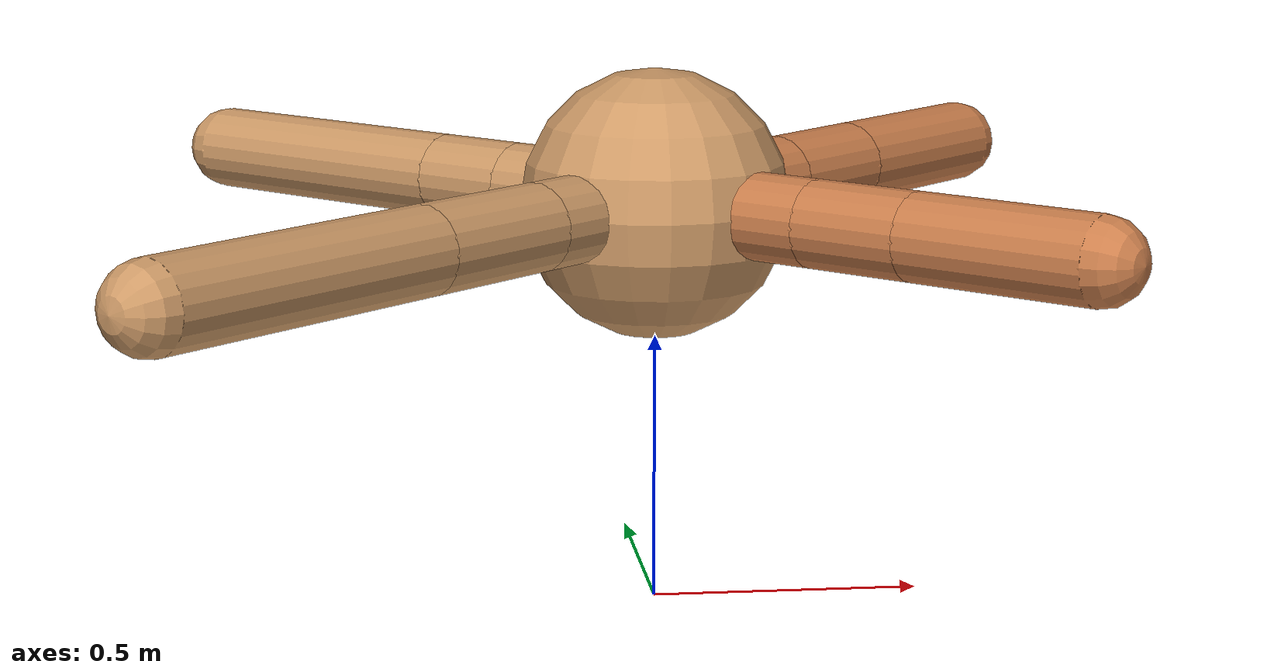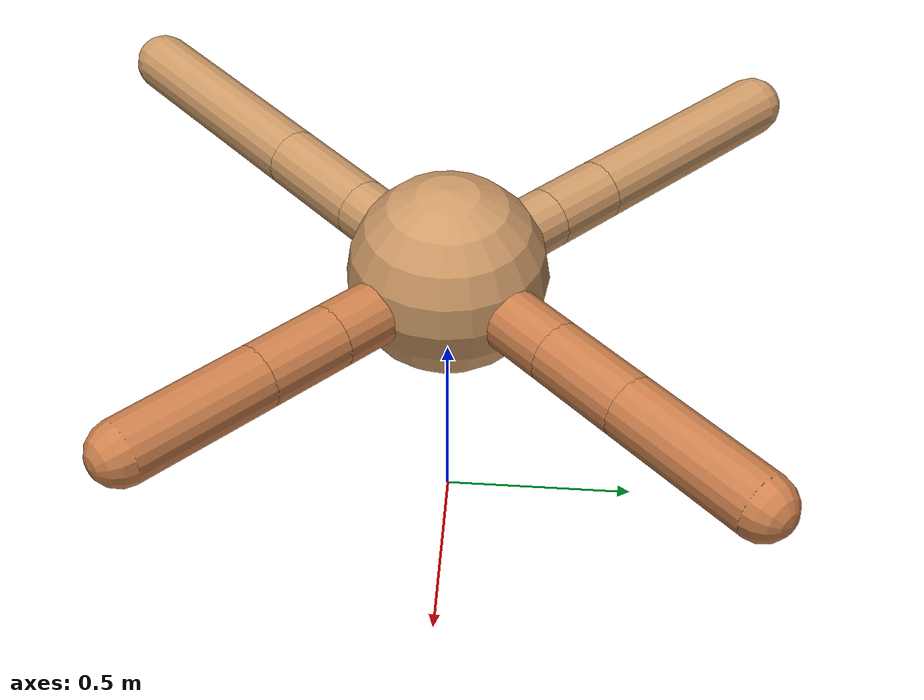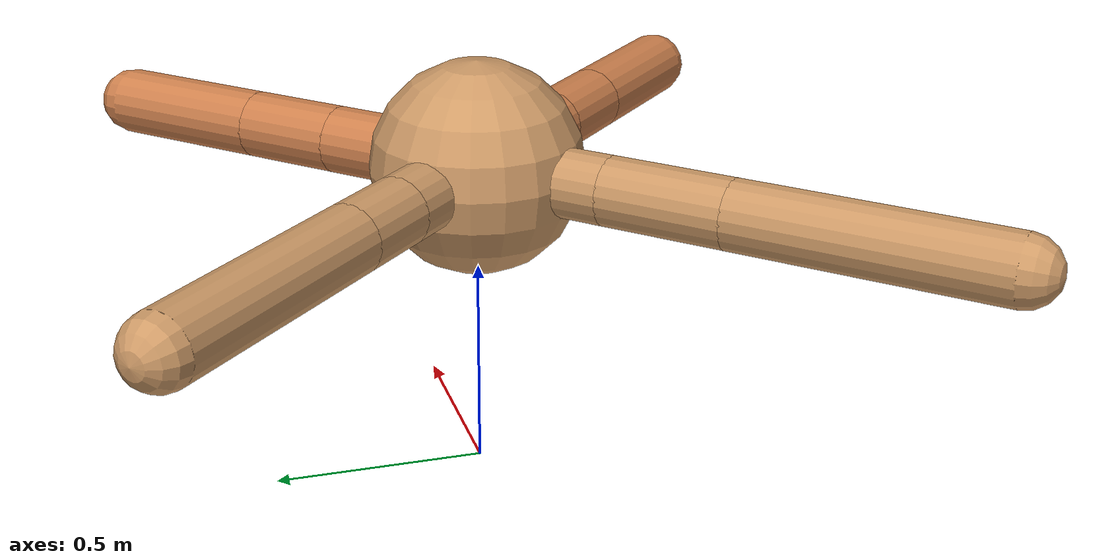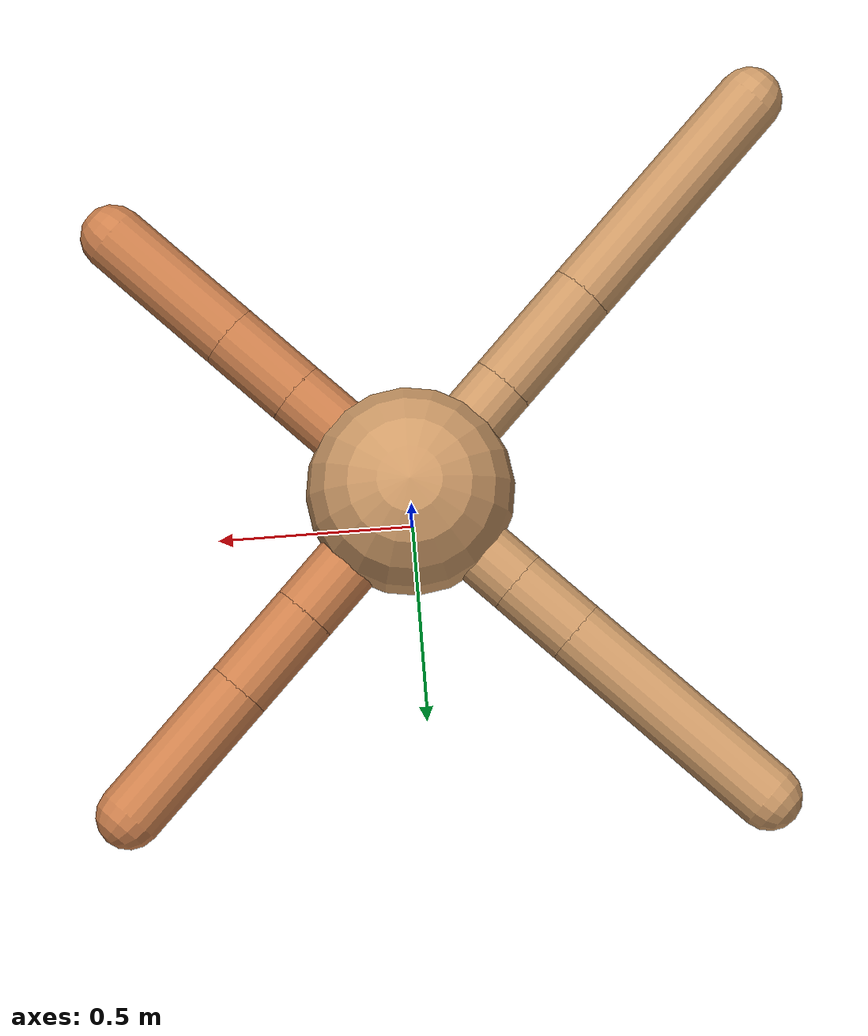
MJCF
<mujoco model="ant">
  <compiler angle="degree" coordinate="local" inertiafromgeom="true" />
  <option integrator="RK4" timestep="0.01" />
  <custom>
    <numeric data="0.0 0.0 0.55 1.0 0.0 0.0 0.0 0.0 1.0 0.0 -1.0 0.0 -1.0 0.0 1.0" name="init_qpos" />
  </custom>
  <default>
    <joint armature="1" damping="1" limited="true" />
    <geom conaffinity="0" condim="3" density="5.0" friction="1.5 0.1 0.1" margin="0.01" rgba="0.8 0.6 0.4 1" />
  </default>
  <worldbody>
    <body name="torso" pos="0 0 0.75">
      <geom name="torso_geom" pos="0 0 0" size="0.25" type="sphere" />

      <body name="front_left_leg" pos="0 0 0">
        <geom fromto="0.0 0.0 0.0 0.2718481921879378 0.2718481921879378 0.0" name="aux_1_geom" size="0.08" type="capsule" rgba=".8 .5 .3 1" />
        <body name="aux_1" pos="0.2718481921879378 0.2718481921879378 0.0">
          <joint axis="0 0 1" name="hip_1" pos="0.0 0.0 0.0" range="-40 40" type="hinge" />
          <geom fromto="0.0 0.0 0.0 0.1681856536073888 0.1681856536073888 0.0" name="left_leg_geom" size="0.08" type="capsule" rgba=".8 .5 .3 1" />
          <body pos="0.1681856536073888 0.1681856536073888 0.0" name="front_left_foot">
            <joint axis="-1 1 0" name="ankle_1" pos="0.0 0.0 0.0" range="30 100" type="hinge" />
            <geom fromto="0.0 0.0 0.0 0.27771683009651316 0.27771683009651316 0.0" name="left_ankle_geom" size="0.08" type="capsule" rgba=".8 .5 .3 1" />
          </body>
        </body>
      </body>
      <body name="front_right_leg" pos="0 0 0">
        <geom fromto="0.0 0.0 0.0 -0.23621372917891176 0.23621372917891176 0.0" name="aux_2_geom" size="0.08" type="capsule" />
        <body name="aux_2" pos="-0.23621372917891176 0.23621372917891176 0.0">
          <joint axis="0 0 1" name="hip_2" pos="0.0 0.0 0.0" range="-40 40" type="hinge" />
          <geom fromto="0.0 0.0 0.0 -0.1287714628616589 0.1287714628616589 0.0" name="right_leg_geom" size="0.08" type="capsule" />
          <body pos="-0.1287714628616589 0.1287714628616589 0.0" name="front_right_foot">
            <joint axis="1 1 0" name="ankle_2" pos="0.0 0.0 0.0" range="-100 -30" type="hinge" />
            <geom fromto="0.0 0.0 0.0 -0.42257357984356275 0.42257357984356275 0.0" name="right_ankle_geom" size="0.08" type="capsule" />
          </body>
        </body>
      </body>
      <body name="left_back_leg" pos="0 0 0">
        <geom fromto="0.0 0.0 0.0 -0.2384409696024303 -0.2384409696024303 0.0" name="aux_3_geom" size="0.08" type="capsule" />
        <body name="aux_3" pos="-0.2384409696024303 -0.2384409696024303 0.0">
          <joint axis="0 0 1" name="hip_3" pos="0.0 0.0 0.0" range="-40 40" type="hinge" />
          <geom fromto="0.0 0.0 0.0 -0.2062510428898718 -0.2062510428898718 0.0" name="back_leg_geom" size="0.08" type="capsule" />
          <body pos="-0.2062510428898718 -0.2062510428898718 0.0" name="left_back_foot">
            <joint axis="-1 1 0" name="ankle_3" pos="0.0 0.0 0.0" range="-100 -30" type="hinge" />
            <geom fromto="0.0 0.0 0.0 -0.44157914575360985 -0.44157914575360985 0.0" name="third_ankle_geom" size="0.08" type="capsule" />
          </body>
        </body>
      </body>
      <body name="right_back_leg" pos="0 0 0">
        <geom fromto="0.0 0.0 0.0 0.2545959069596286 -0.2545959069596286 0.0" name="aux_4_geom" size="0.08" type="capsule" rgba=".8 .5 .3 1" />
        <body name="aux_4" pos="0.2545959069596286 -0.2545959069596286 0.0">
          <joint axis="0 0 1" name="hip_4" pos="0.0 0.0 0.0" range="-40 40" type="hinge" />
          <geom fromto="0.0 0.0 0.0 0.14904569764155787 -0.14904569764155787 0.0" name="rightback_leg_geom" size="0.08" type="capsule" rgba=".8 .5 .3 1" />
          <body pos="0.14904569764155787 -0.14904569764155787 0.0" name="right_back_foot">
            <joint axis="1 1 0" name="ankle_4" pos="0.0 0.0 0.0" range="30 100" type="hinge" />
            <geom fromto="0.0 0.0 0.0 0.26176118521469566 -0.26176118521469566 0.0" name="fourth_ankle_geom" size="0.08" type="capsule" rgba=".8 .5 .3 1" />
          </body>
        </body>
      </body>
    </body>
  </worldbody>
  <actuator>
    <motor ctrllimited="true" ctrlrange="-1.0 1.0" joint="hip_4" gear="150" />
    <motor ctrllimited="true" ctrlrange="-1.0 1.0" joint="ankle_4" gear="150" />
    <motor ctrllimited="true" ctrlrange="-1.0 1.0" joint="hip_1" gear="150" />
    <motor ctrllimited="true" ctrlrange="-1.0 1.0" joint="ankle_1" gear="150" />
    <motor ctrllimited="true" ctrlrange="-1.0 1.0" joint="hip_2" gear="150" />
    <motor ctrllimited="true" ctrlrange="-1.0 1.0" joint="ankle_2" gear="150" />
    <motor ctrllimited="true" ctrlrange="-1.0 1.0" joint="hip_3" gear="150" />
    <motor ctrllimited="true" ctrlrange="-1.0 1.0" joint="ankle_3" gear="150" />
  </actuator>
</mujoco>
